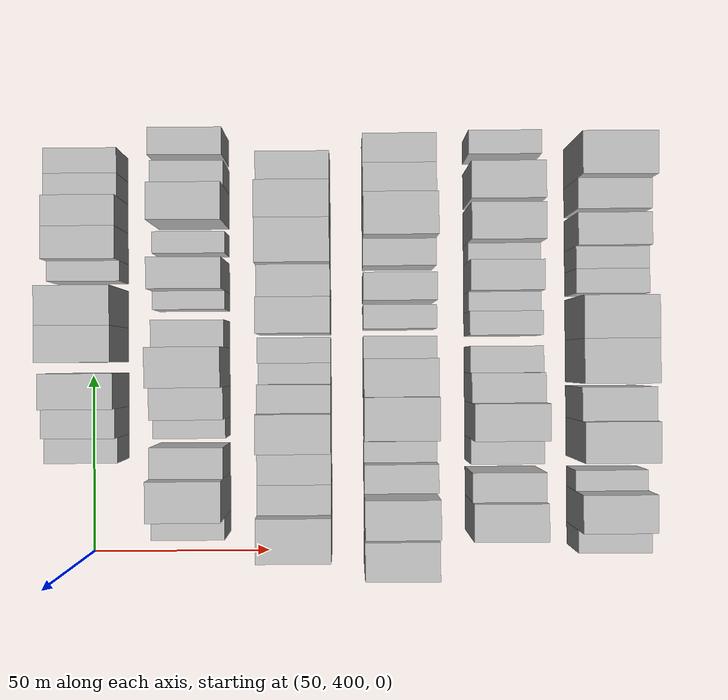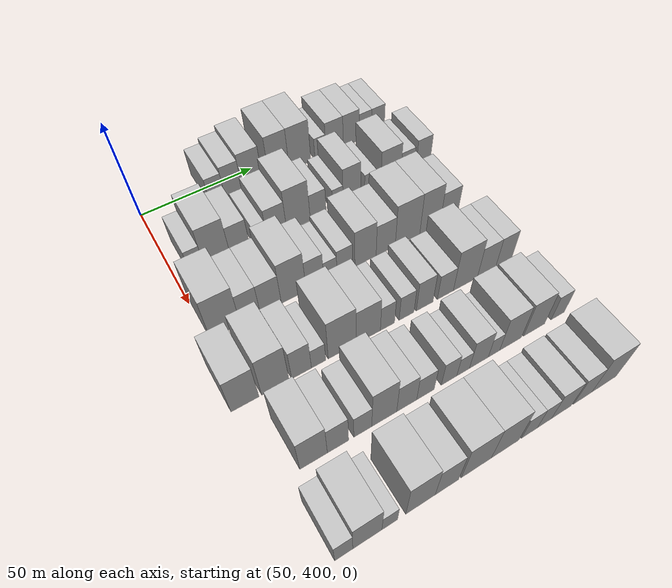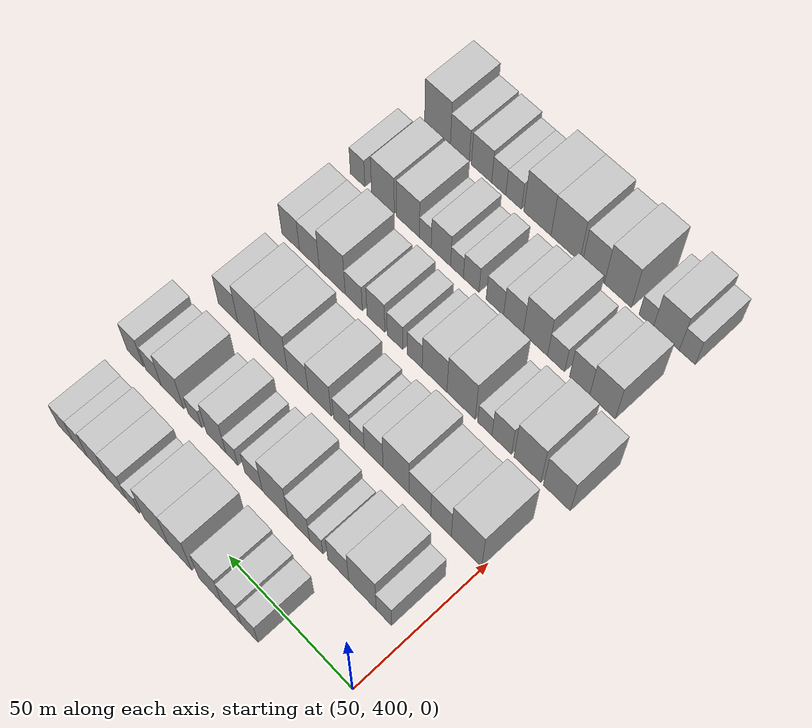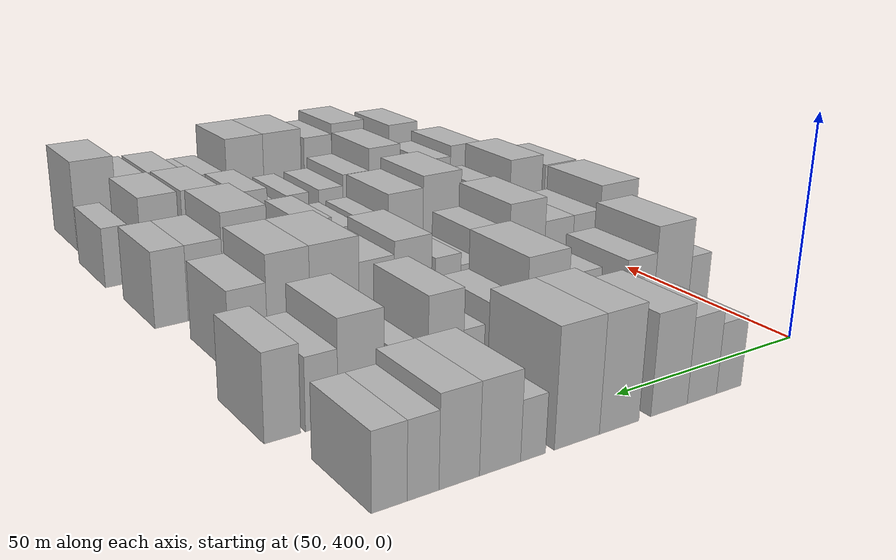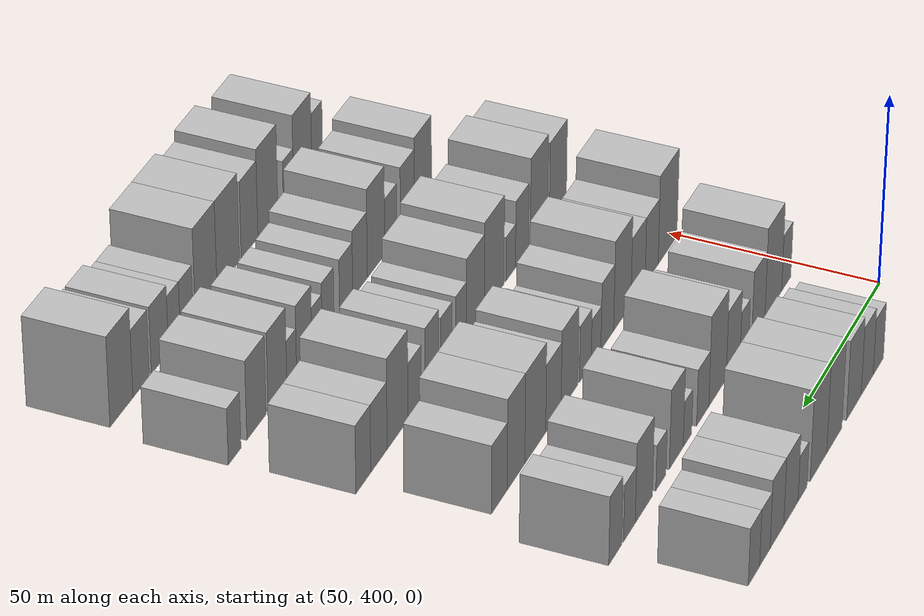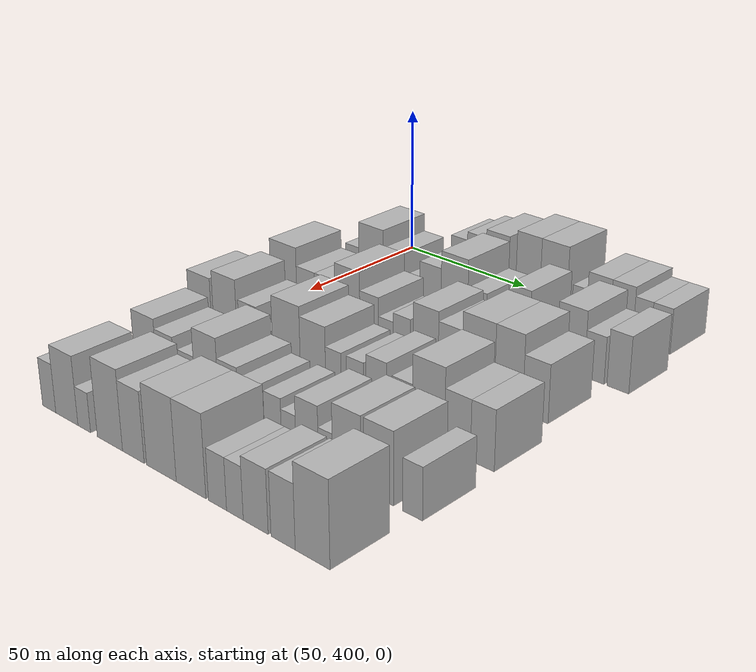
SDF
<sdf version="1.6">
 <world name="default">
  <model name="building_86">
   <static>1</static>
   <pose>50.0000 429.9602 0 0.000000 0.000000 0.000000</pose>
   <link name="link">
    <pose>0 0 7.50 0 0 0</pose>
    <collision name="collision"><geometry><box><size>20.0000 6.9183 15.0000</size></box></geometry></collision>
    <visual name="visual">
     <cast_shadows>0</cast_shadows>
     <geometry><box><size>20.0000 6.9183 15.0000</size></box></geometry>
     <material>
      <script>
       <uri>model://HANNAS_wall/materials/scripts</uri>
       <uri>model://HANNAS_wall/materials/textures</uri>
       <name>vrc/HANNAS_wall</name>
      </script>
     </material>
    </visual>
   </link>
  </model>
  <model name="building_87">
   <static>1</static>
   <pose>50.0000 437.3930 0 0.000000 0.000000 0.000000</pose>
   <link name="link">
    <pose>0 0 9.00 0 0 0</pose>
    <collision name="collision"><geometry><box><size>20.0000 7.9475 18.0000</size></box></geometry></collision>
    <visual name="visual">
     <cast_shadows>0</cast_shadows>
     <geometry><box><size>20.0000 7.9475 18.0000</size></box></geometry>
     <material>
      <script>
       <uri>model://HANNAS_wall/materials/scripts</uri>
       <uri>model://HANNAS_wall/materials/textures</uri>
       <name>vrc/HANNAS_wall</name>
      </script>
     </material>
    </visual>
   </link>
  </model>
  <model name="building_88">
   <static>1</static>
   <pose>50.0000 446.1494 0 0.000000 0.000000 0.000000</pose>
   <link name="link">
    <pose>0 0 10.50 0 0 0</pose>
    <collision name="collision"><geometry><box><size>20.0000 9.5653 21.0000</size></box></geometry></collision>
    <visual name="visual">
     <cast_shadows>0</cast_shadows>
     <geometry><box><size>20.0000 9.5653 21.0000</size></box></geometry>
     <material>
      <script>
       <uri>model://HANNAS_wall/materials/scripts</uri>
       <uri>model://HANNAS_wall/materials/textures</uri>
       <name>vrc/HANNAS_wall</name>
      </script>
     </material>
    </visual>
   </link>
  </model>
  <model name="building_89">
   <static>1</static>
   <pose>50.0000 458.8208 0 0.000000 0.000000 0.000000</pose>
   <link name="link">
    <pose>0 0 12.00 0 0 0</pose>
    <collision name="collision"><geometry><box><size>20.0000 9.7775 24.0000</size></box></geometry></collision>
    <visual name="visual">
     <cast_shadows>0</cast_shadows>
     <geometry><box><size>20.0000 9.7775 24.0000</size></box></geometry>
     <material>
      <script>
       <uri>model://HANNAS_wall/materials/scripts</uri>
       <uri>model://HANNAS_wall/materials/textures</uri>
       <name>vrc/HANNAS_wall</name>
      </script>
     </material>
    </visual>
   </link>
  </model>
  <model name="building_90">
   <static>1</static>
   <pose>50.0000 469.0062 0 0.000000 0.000000 0.000000</pose>
   <link name="link">
    <pose>0 0 12.00 0 0 0</pose>
    <collision name="collision"><geometry><box><size>20.0000 10.5933 24.0000</size></box></geometry></collision>
    <visual name="visual">
     <cast_shadows>0</cast_shadows>
     <geometry><box><size>20.0000 10.5933 24.0000</size></box></geometry>
     <material>
      <script>
       <uri>model://HANNAS_wall/materials/scripts</uri>
       <uri>model://HANNAS_wall/materials/textures</uri>
       <name>vrc/HANNAS_wall</name>
      </script>
     </material>
    </visual>
   </link>
  </model>
  <model name="building_91">
   <static>1</static>
   <pose>50.0000 479.0985 0 0.000000 0.000000 0.000000</pose>
   <link name="link">
    <pose>0 0 6.00 0 0 0</pose>
    <collision name="collision"><geometry><box><size>20.0000 5.5913 12.0000</size></box></geometry></collision>
    <visual name="visual">
     <cast_shadows>0</cast_shadows>
     <geometry><box><size>20.0000 5.5913 12.0000</size></box></geometry>
     <material>
      <script>
       <uri>model://HANNAS_wall/materials/scripts</uri>
       <uri>model://HANNAS_wall/materials/textures</uri>
       <name>vrc/HANNAS_wall</name>
      </script>
     </material>
    </visual>
   </link>
  </model>
  <model name="building_92">
   <static>1</static>
   <pose>50.0000 486.3324 0 0.000000 0.000000 0.000000</pose>
   <link name="link">
    <pose>0 0 9.00 0 0 0</pose>
    <collision name="collision"><geometry><box><size>20.0000 8.8766 18.0000</size></box></geometry></collision>
    <visual name="visual">
     <cast_shadows>0</cast_shadows>
     <geometry><box><size>20.0000 8.8766 18.0000</size></box></geometry>
     <material>
      <script>
       <uri>model://HANNAS_wall/materials/scripts</uri>
       <uri>model://HANNAS_wall/materials/textures</uri>
       <name>vrc/HANNAS_wall</name>
      </script>
     </material>
    </visual>
   </link>
  </model>
  <model name="building_93">
   <static>1</static>
   <pose>50.0000 494.9601 0 0.000000 0.000000 0.000000</pose>
   <link name="link">
    <pose>0 0 9.00 0 0 0</pose>
    <collision name="collision"><geometry><box><size>20.0000 8.3788 18.0000</size></box></geometry></collision>
    <visual name="visual">
     <cast_shadows>0</cast_shadows>
     <geometry><box><size>20.0000 8.3788 18.0000</size></box></geometry>
     <material>
      <script>
       <uri>model://HANNAS_wall/materials/scripts</uri>
       <uri>model://HANNAS_wall/materials/textures</uri>
       <name>vrc/HANNAS_wall</name>
      </script>
     </material>
    </visual>
   </link>
  </model>
  <model name="building_94">
   <static>1</static>
   <pose>50.0000 502.3244 0 0.000000 0.000000 0.000000</pose>
   <link name="link">
    <pose>0 0 7.50 0 0 0</pose>
    <collision name="collision"><geometry><box><size>20.0000 6.3497 15.0000</size></box></geometry></collision>
    <visual name="visual">
     <cast_shadows>0</cast_shadows>
     <geometry><box><size>20.0000 6.3497 15.0000</size></box></geometry>
     <material>
      <script>
       <uri>model://HANNAS_wall/materials/scripts</uri>
       <uri>model://HANNAS_wall/materials/textures</uri>
       <name>vrc/HANNAS_wall</name>
      </script>
     </material>
    </visual>
   </link>
  </model>
  <model name="building_95">
   <static>1</static>
   <pose>50.0000 508.9466 0 0.000000 0.000000 0.000000</pose>
   <link name="link">
    <pose>0 0 7.50 0 0 0</pose>
    <collision name="collision"><geometry><box><size>20.0000 6.8949 15.0000</size></box></geometry></collision>
    <visual name="visual">
     <cast_shadows>0</cast_shadows>
     <geometry><box><size>20.0000 6.8949 15.0000</size></box></geometry>
     <material>
      <script>
       <uri>model://HANNAS_wall/materials/scripts</uri>
       <uri>model://HANNAS_wall/materials/textures</uri>
       <name>vrc/HANNAS_wall</name>
      </script>
     </material>
    </visual>
   </link>
  </model>
  <model name="building_199">
   <static>1</static>
   <pose>79.0000 408.4705 0 0.000000 0.000000 0.000000</pose>
   <link name="link">
    <pose>0 0 7.50 0 0 0</pose>
    <collision name="collision"><geometry><box><size>20.0000 6.0380 15.0000</size></box></geometry></collision>
    <visual name="visual">
     <cast_shadows>0</cast_shadows>
     <geometry><box><size>20.0000 6.0380 15.0000</size></box></geometry>
     <material>
      <script>
       <uri>model://HANNAS_wall/materials/scripts</uri>
       <uri>model://HANNAS_wall/materials/textures</uri>
       <name>vrc/HANNAS_wall</name>
      </script>
     </material>
    </visual>
   </link>
  </model>
  <model name="building_200">
   <static>1</static>
   <pose>79.0000 416.9310 0 0.000000 0.000000 0.000000</pose>
   <link name="link">
    <pose>0 0 12.00 0 0 0</pose>
    <collision name="collision"><geometry><box><size>20.0000 10.8831 24.0000</size></box></geometry></collision>
    <visual name="visual">
     <cast_shadows>0</cast_shadows>
     <geometry><box><size>20.0000 10.8831 24.0000</size></box></geometry>
     <material>
      <script>
       <uri>model://HANNAS_wall/materials/scripts</uri>
       <uri>model://HANNAS_wall/materials/textures</uri>
       <name>vrc/HANNAS_wall</name>
      </script>
     </material>
    </visual>
   </link>
  </model>
  <model name="building_201">
   <static>1</static>
   <pose>79.0000 426.5983 0 0.000000 0.000000 0.000000</pose>
   <link name="link">
    <pose>0 0 9.00 0 0 0</pose>
    <collision name="collision"><geometry><box><size>20.0000 8.4514 18.0000</size></box></geometry></collision>
    <visual name="visual">
     <cast_shadows>0</cast_shadows>
     <geometry><box><size>20.0000 8.4514 18.0000</size></box></geometry>
     <material>
      <script>
       <uri>model://HANNAS_wall/materials/scripts</uri>
       <uri>model://HANNAS_wall/materials/textures</uri>
       <name>vrc/HANNAS_wall</name>
      </script>
     </material>
    </visual>
   </link>
  </model>
  <model name="building_202">
   <static>1</static>
   <pose>79.0000 435.5269 0 0.000000 0.000000 0.000000</pose>
   <link name="link">
    <pose>0 0 6.00 0 0 0</pose>
    <collision name="collision"><geometry><box><size>20.0000 5.4058 12.0000</size></box></geometry></collision>
    <visual name="visual">
     <cast_shadows>0</cast_shadows>
     <geometry><box><size>20.0000 5.4058 12.0000</size></box></geometry>
     <material>
      <script>
       <uri>model://HANNAS_wall/materials/scripts</uri>
       <uri>model://HANNAS_wall/materials/textures</uri>
       <name>vrc/HANNAS_wall</name>
      </script>
     </material>
    </visual>
   </link>
  </model>
  <model name="building_203">
   <static>1</static>
   <pose>79.0000 442.6333 0 0.000000 0.000000 0.000000</pose>
   <link name="link">
    <pose>0 0 9.00 0 0 0</pose>
    <collision name="collision"><geometry><box><size>20.0000 8.8070 18.0000</size></box></geometry></collision>
    <visual name="visual">
     <cast_shadows>0</cast_shadows>
     <geometry><box><size>20.0000 8.8070 18.0000</size></box></geometry>
     <material>
      <script>
       <uri>model://HANNAS_wall/materials/scripts</uri>
       <uri>model://HANNAS_wall/materials/textures</uri>
       <name>vrc/HANNAS_wall</name>
      </script>
     </material>
    </visual>
   </link>
  </model>
  <model name="building_204">
   <static>1</static>
   <pose>79.0000 452.4380 0 0.000000 0.000000 0.000000</pose>
   <link name="link">
    <pose>0 0 12.00 0 0 0</pose>
    <collision name="collision"><geometry><box><size>20.0000 10.8023 24.0000</size></box></geometry></collision>
    <visual name="visual">
     <cast_shadows>0</cast_shadows>
     <geometry><box><size>20.0000 10.8023 24.0000</size></box></geometry>
     <material>
      <script>
       <uri>model://HANNAS_wall/materials/scripts</uri>
       <uri>model://HANNAS_wall/materials/textures</uri>
       <name>vrc/HANNAS_wall</name>
      </script>
     </material>
    </visual>
   </link>
  </model>
  <model name="building_205">
   <static>1</static>
   <pose>79.0000 461.5827 0 0.000000 0.000000 0.000000</pose>
   <link name="link">
    <pose>0 0 7.50 0 0 0</pose>
    <collision name="collision"><geometry><box><size>20.0000 7.4871 15.0000</size></box></geometry></collision>
    <visual name="visual">
     <cast_shadows>0</cast_shadows>
     <geometry><box><size>20.0000 7.4871 15.0000</size></box></geometry>
     <material>
      <script>
       <uri>model://HANNAS_wall/materials/scripts</uri>
       <uri>model://HANNAS_wall/materials/textures</uri>
       <name>vrc/HANNAS_wall</name>
      </script>
     </material>
    </visual>
   </link>
  </model>
  <model name="building_206">
   <static>1</static>
   <pose>79.0000 470.8729 0 0.000000 0.000000 0.000000</pose>
   <link name="link">
    <pose>0 0 6.00 0 0 0</pose>
    <collision name="collision"><geometry><box><size>20.0000 5.0934 12.0000</size></box></geometry></collision>
    <visual name="visual">
     <cast_shadows>0</cast_shadows>
     <geometry><box><size>20.0000 5.0934 12.0000</size></box></geometry>
     <material>
      <script>
       <uri>model://HANNAS_wall/materials/scripts</uri>
       <uri>model://HANNAS_wall/materials/textures</uri>
       <name>vrc/HANNAS_wall</name>
      </script>
     </material>
    </visual>
   </link>
  </model>
  <model name="building_207">
   <static>1</static>
   <pose>79.0000 477.6265 0 0.000000 0.000000 0.000000</pose>
   <link name="link">
    <pose>0 0 10.50 0 0 0</pose>
    <collision name="collision"><geometry><box><size>20.0000 8.4139 21.0000</size></box></geometry></collision>
    <visual name="visual">
     <cast_shadows>0</cast_shadows>
     <geometry><box><size>20.0000 8.4139 21.0000</size></box></geometry>
     <material>
      <script>
       <uri>model://HANNAS_wall/materials/scripts</uri>
       <uri>model://HANNAS_wall/materials/textures</uri>
       <name>vrc/HANNAS_wall</name>
      </script>
     </material>
    </visual>
   </link>
  </model>
  <model name="building_208">
   <static>1</static>
   <pose>79.0000 486.8293 0 0.000000 0.000000 0.000000</pose>
   <link name="link">
    <pose>0 0 6.00 0 0 0</pose>
    <collision name="collision"><geometry><box><size>20.0000 5.9916 12.0000</size></box></geometry></collision>
    <visual name="visual">
     <cast_shadows>0</cast_shadows>
     <geometry><box><size>20.0000 5.9916 12.0000</size></box></geometry>
     <material>
      <script>
       <uri>model://HANNAS_wall/materials/scripts</uri>
       <uri>model://HANNAS_wall/materials/textures</uri>
       <name>vrc/HANNAS_wall</name>
      </script>
     </material>
    </visual>
   </link>
  </model>
  <model name="building_209">
   <static>1</static>
   <pose>79.0000 496.8470 0 0.000000 0.000000 0.000000</pose>
   <link name="link">
    <pose>0 0 10.50 0 0 0</pose>
    <collision name="collision"><geometry><box><size>20.0000 10.0439 21.0000</size></box></geometry></collision>
    <visual name="visual">
     <cast_shadows>0</cast_shadows>
     <geometry><box><size>20.0000 10.0439 21.0000</size></box></geometry>
     <material>
      <script>
       <uri>model://HANNAS_wall/materials/scripts</uri>
       <uri>model://HANNAS_wall/materials/textures</uri>
       <name>vrc/HANNAS_wall</name>
      </script>
     </material>
    </visual>
   </link>
  </model>
  <model name="building_210">
   <static>1</static>
   <pose>79.0000 505.3056 0 0.000000 0.000000 0.000000</pose>
   <link name="link">
    <pose>0 0 7.50 0 0 0</pose>
    <collision name="collision"><geometry><box><size>20.0000 6.8732 15.0000</size></box></geometry></collision>
    <visual name="visual">
     <cast_shadows>0</cast_shadows>
     <geometry><box><size>20.0000 6.8732 15.0000</size></box></geometry>
     <material>
      <script>
       <uri>model://HANNAS_wall/materials/scripts</uri>
       <uri>model://HANNAS_wall/materials/textures</uri>
       <name>vrc/HANNAS_wall</name>
      </script>
     </material>
    </visual>
   </link>
  </model>
  <model name="building_211">
   <static>1</static>
   <pose>79.0000 513.4497 0 0.000000 0.000000 0.000000</pose>
   <link name="link">
    <pose>0 0 9.00 0 0 0</pose>
    <collision name="collision"><geometry><box><size>20.0000 7.4150 18.0000</size></box></geometry></collision>
    <visual name="visual">
     <cast_shadows>0</cast_shadows>
     <geometry><box><size>20.0000 7.4150 18.0000</size></box></geometry>
     <material>
      <script>
       <uri>model://HANNAS_wall/materials/scripts</uri>
       <uri>model://HANNAS_wall/materials/textures</uri>
       <name>vrc/HANNAS_wall</name>
      </script>
     </material>
    </visual>
   </link>
  </model>
  <model name="building_310">
   <static>1</static>
   <pose>108.0000 406.5081 0 0.000000 0.000000 0.000000</pose>
   <link name="link">
    <pose>0 0 12.00 0 0 0</pose>
    <collision name="collision"><geometry><box><size>20.0000 11.9198 24.0000</size></box></geometry></collision>
    <visual name="visual">
     <cast_shadows>0</cast_shadows>
     <geometry><box><size>20.0000 11.9198 24.0000</size></box></geometry>
     <material>
      <script>
       <uri>model://HANNAS_wall/materials/scripts</uri>
       <uri>model://HANNAS_wall/materials/textures</uri>
       <name>vrc/HANNAS_wall</name>
      </script>
     </material>
    </visual>
   </link>
  </model>
  <model name="building_311">
   <static>1</static>
   <pose>108.0000 416.5369 0 0.000000 0.000000 0.000000</pose>
   <link name="link">
    <pose>0 0 9.00 0 0 0</pose>
    <collision name="collision"><geometry><box><size>20.0000 8.1377 18.0000</size></box></geometry></collision>
    <visual name="visual">
     <cast_shadows>0</cast_shadows>
     <geometry><box><size>20.0000 8.1377 18.0000</size></box></geometry>
     <material>
      <script>
       <uri>model://HANNAS_wall/materials/scripts</uri>
       <uri>model://HANNAS_wall/materials/textures</uri>
       <name>vrc/HANNAS_wall</name>
      </script>
     </material>
    </visual>
   </link>
  </model>
  <model name="building_312">
   <static>1</static>
   <pose>108.0000 424.9684 0 0.000000 0.000000 0.000000</pose>
   <link name="link">
    <pose>0 0 9.00 0 0 0</pose>
    <collision name="collision"><geometry><box><size>20.0000 8.7254 18.0000</size></box></geometry></collision>
    <visual name="visual">
     <cast_shadows>0</cast_shadows>
     <geometry><box><size>20.0000 8.7254 18.0000</size></box></geometry>
     <material>
      <script>
       <uri>model://HANNAS_wall/materials/scripts</uri>
       <uri>model://HANNAS_wall/materials/textures</uri>
       <name>vrc/HANNAS_wall</name>
      </script>
     </material>
    </visual>
   </link>
  </model>
  <model name="building_313">
   <static>1</static>
   <pose>108.0000 434.5782 0 0.000000 0.000000 0.000000</pose>
   <link name="link">
    <pose>0 0 12.00 0 0 0</pose>
    <collision name="collision"><geometry><box><size>20.0000 10.4943 24.0000</size></box></geometry></collision>
    <visual name="visual">
     <cast_shadows>0</cast_shadows>
     <geometry><box><size>20.0000 10.4943 24.0000</size></box></geometry>
     <material>
      <script>
       <uri>model://HANNAS_wall/materials/scripts</uri>
       <uri>model://HANNAS_wall/materials/textures</uri>
       <name>vrc/HANNAS_wall</name>
      </script>
     </material>
    </visual>
   </link>
  </model>
  <model name="building_314">
   <static>1</static>
   <pose>108.0000 443.6881 0 0.000000 0.000000 0.000000</pose>
   <link name="link">
    <pose>0 0 9.00 0 0 0</pose>
    <collision name="collision"><geometry><box><size>20.0000 7.7256 18.0000</size></box></geometry></collision>
    <visual name="visual">
     <cast_shadows>0</cast_shadows>
     <geometry><box><size>20.0000 7.7256 18.0000</size></box></geometry>
     <material>
      <script>
       <uri>model://HANNAS_wall/materials/scripts</uri>
       <uri>model://HANNAS_wall/materials/textures</uri>
       <name>vrc/HANNAS_wall</name>
      </script>
     </material>
    </visual>
   </link>
  </model>
  <model name="building_315">
   <static>1</static>
   <pose>108.0000 450.4534 0 0.000000 0.000000 0.000000</pose>
   <link name="link">
    <pose>0 0 6.00 0 0 0</pose>
    <collision name="collision"><geometry><box><size>20.0000 5.8049 12.0000</size></box></geometry></collision>
    <visual name="visual">
     <cast_shadows>0</cast_shadows>
     <geometry><box><size>20.0000 5.8049 12.0000</size></box></geometry>
     <material>
      <script>
       <uri>model://HANNAS_wall/materials/scripts</uri>
       <uri>model://HANNAS_wall/materials/textures</uri>
       <name>vrc/HANNAS_wall</name>
      </script>
     </material>
    </visual>
   </link>
  </model>
  <model name="building_316">
   <static>1</static>
   <pose>108.0000 456.8380 0 0.000000 0.000000 0.000000</pose>
   <link name="link">
    <pose>0 0 7.50 0 0 0</pose>
    <collision name="collision"><geometry><box><size>20.0000 6.9644 15.0000</size></box></geometry></collision>
    <visual name="visual">
     <cast_shadows>0</cast_shadows>
     <geometry><box><size>20.0000 6.9644 15.0000</size></box></geometry>
     <material>
      <script>
       <uri>model://HANNAS_wall/materials/scripts</uri>
       <uri>model://HANNAS_wall/materials/textures</uri>
       <name>vrc/HANNAS_wall</name>
      </script>
     </material>
    </visual>
   </link>
  </model>
  <model name="building_317">
   <static>1</static>
   <pose>108.0000 466.1929 0 0.000000 0.000000 0.000000</pose>
   <link name="link">
    <pose>0 0 10.50 0 0 0</pose>
    <collision name="collision"><geometry><box><size>20.0000 9.7454 21.0000</size></box></geometry></collision>
    <visual name="visual">
     <cast_shadows>0</cast_shadows>
     <geometry><box><size>20.0000 9.7454 21.0000</size></box></geometry>
     <material>
      <script>
       <uri>model://HANNAS_wall/materials/scripts</uri>
       <uri>model://HANNAS_wall/materials/textures</uri>
       <name>vrc/HANNAS_wall</name>
      </script>
     </material>
    </visual>
   </link>
  </model>
  <model name="building_318">
   <static>1</static>
   <pose>108.0000 475.5325 0 0.000000 0.000000 0.000000</pose>
   <link name="link">
    <pose>0 0 9.00 0 0 0</pose>
    <collision name="collision"><geometry><box><size>20.0000 8.9336 18.0000</size></box></geometry></collision>
    <visual name="visual">
     <cast_shadows>0</cast_shadows>
     <geometry><box><size>20.0000 8.9336 18.0000</size></box></geometry>
     <material>
      <script>
       <uri>model://HANNAS_wall/materials/scripts</uri>
       <uri>model://HANNAS_wall/materials/textures</uri>
       <name>vrc/HANNAS_wall</name>
      </script>
     </material>
    </visual>
   </link>
  </model>
  <model name="building_319">
   <static>1</static>
   <pose>108.0000 485.9174 0 0.000000 0.000000 0.000000</pose>
   <link name="link">
    <pose>0 0 12.00 0 0 0</pose>
    <collision name="collision"><geometry><box><size>20.0000 11.8364 24.0000</size></box></geometry></collision>
    <visual name="visual">
     <cast_shadows>0</cast_shadows>
     <geometry><box><size>20.0000 11.8364 24.0000</size></box></geometry>
     <material>
      <script>
       <uri>model://HANNAS_wall/materials/scripts</uri>
       <uri>model://HANNAS_wall/materials/textures</uri>
       <name>vrc/HANNAS_wall</name>
      </script>
     </material>
    </visual>
   </link>
  </model>
  <model name="building_320">
   <static>1</static>
   <pose>108.0000 496.8282 0 0.000000 0.000000 0.000000</pose>
   <link name="link">
    <pose>0 0 12.00 0 0 0</pose>
    <collision name="collision"><geometry><box><size>20.0000 9.9853 24.0000</size></box></geometry></collision>
    <visual name="visual">
     <cast_shadows>0</cast_shadows>
     <geometry><box><size>20.0000 9.9853 24.0000</size></box></geometry>
     <material>
      <script>
       <uri>model://HANNAS_wall/materials/scripts</uri>
       <uri>model://HANNAS_wall/materials/textures</uri>
       <name>vrc/HANNAS_wall</name>
      </script>
     </material>
    </visual>
   </link>
  </model>
  <model name="building_321">
   <static>1</static>
   <pose>108.0000 506.1803 0 0.000000 0.000000 0.000000</pose>
   <link name="link">
    <pose>0 0 9.00 0 0 0</pose>
    <collision name="collision"><geometry><box><size>20.0000 8.7188 18.0000</size></box></geometry></collision>
    <visual name="visual">
     <cast_shadows>0</cast_shadows>
     <geometry><box><size>20.0000 8.7188 18.0000</size></box></geometry>
     <material>
      <script>
       <uri>model://HANNAS_wall/materials/scripts</uri>
       <uri>model://HANNAS_wall/materials/textures</uri>
       <name>vrc/HANNAS_wall</name>
      </script>
     </material>
    </visual>
   </link>
  </model>
  <model name="building_424">
   <static>1</static>
   <pose>137.0000 400.2787 0 0.000000 0.000000 0.000000</pose>
   <link name="link">
    <pose>0 0 10.50 0 0 0</pose>
    <collision name="collision"><geometry><box><size>20.0000 10.4833 21.0000</size></box></geometry></collision>
    <visual name="visual">
     <cast_shadows>0</cast_shadows>
     <geometry><box><size>20.0000 10.4833 21.0000</size></box></geometry>
     <material>
      <script>
       <uri>model://HANNAS_wall/materials/scripts</uri>
       <uri>model://HANNAS_wall/materials/textures</uri>
       <name>vrc/HANNAS_wall</name>
      </script>
     </material>
    </visual>
   </link>
  </model>
  <model name="building_425">
   <static>1</static>
   <pose>137.0000 411.7975 0 0.000000 0.000000 0.000000</pose>
   <link name="link">
    <pose>0 0 12.00 0 0 0</pose>
    <collision name="collision"><geometry><box><size>20.0000 10.5542 24.0000</size></box></geometry></collision>
    <visual name="visual">
     <cast_shadows>0</cast_shadows>
     <geometry><box><size>20.0000 10.5542 24.0000</size></box></geometry>
     <material>
      <script>
       <uri>model://HANNAS_wall/materials/scripts</uri>
       <uri>model://HANNAS_wall/materials/textures</uri>
       <name>vrc/HANNAS_wall</name>
      </script>
     </material>
    </visual>
   </link>
  </model>
  <model name="building_426">
   <static>1</static>
   <pose>137.0000 421.9753 0 0.000000 0.000000 0.000000</pose>
   <link name="link">
    <pose>0 0 9.00 0 0 0</pose>
    <collision name="collision"><geometry><box><size>20.0000 7.8013 18.0000</size></box></geometry></collision>
    <visual name="visual">
     <cast_shadows>0</cast_shadows>
     <geometry><box><size>20.0000 7.8013 18.0000</size></box></geometry>
     <material>
      <script>
       <uri>model://HANNAS_wall/materials/scripts</uri>
       <uri>model://HANNAS_wall/materials/textures</uri>
       <name>vrc/HANNAS_wall</name>
      </script>
     </material>
    </visual>
   </link>
  </model>
  <model name="building_427">
   <static>1</static>
   <pose>137.0000 428.7517 0 0.000000 0.000000 0.000000</pose>
   <link name="link">
    <pose>0 0 6.00 0 0 0</pose>
    <collision name="collision"><geometry><box><size>20.0000 5.7515 12.0000</size></box></geometry></collision>
    <visual name="visual">
     <cast_shadows>0</cast_shadows>
     <geometry><box><size>20.0000 5.7515 12.0000</size></box></geometry>
     <material>
      <script>
       <uri>model://HANNAS_wall/materials/scripts</uri>
       <uri>model://HANNAS_wall/materials/textures</uri>
       <name>vrc/HANNAS_wall</name>
      </script>
     </material>
    </visual>
   </link>
  </model>
  <model name="building_428">
   <static>1</static>
   <pose>137.0000 438.3985 0 0.000000 0.000000 0.000000</pose>
   <link name="link">
    <pose>0 0 12.00 0 0 0</pose>
    <collision name="collision"><geometry><box><size>20.0000 11.5421 24.0000</size></box></geometry></collision>
    <visual name="visual">
     <cast_shadows>0</cast_shadows>
     <geometry><box><size>20.0000 11.5421 24.0000</size></box></geometry>
     <material>
      <script>
       <uri>model://HANNAS_wall/materials/scripts</uri>
       <uri>model://HANNAS_wall/materials/textures</uri>
       <name>vrc/HANNAS_wall</name>
      </script>
     </material>
    </visual>
   </link>
  </model>
  <model name="building_429">
   <static>1</static>
   <pose>137.0000 449.2829 0 0.000000 0.000000 0.000000</pose>
   <link name="link">
    <pose>0 0 10.50 0 0 0</pose>
    <collision name="collision"><geometry><box><size>20.0000 10.2268 21.0000</size></box></geometry></collision>
    <visual name="visual">
     <cast_shadows>0</cast_shadows>
     <geometry><box><size>20.0000 10.2268 21.0000</size></box></geometry>
     <material>
      <script>
       <uri>model://HANNAS_wall/materials/scripts</uri>
       <uri>model://HANNAS_wall/materials/textures</uri>
       <name>vrc/HANNAS_wall</name>
      </script>
     </material>
    </visual>
   </link>
  </model>
  <model name="building_430">
   <static>1</static>
   <pose>137.0000 457.4724 0 0.000000 0.000000 0.000000</pose>
   <link name="link">
    <pose>0 0 7.50 0 0 0</pose>
    <collision name="collision"><geometry><box><size>20.0000 6.1521 15.0000</size></box></geometry></collision>
    <visual name="visual">
     <cast_shadows>0</cast_shadows>
     <geometry><box><size>20.0000 6.1521 15.0000</size></box></geometry>
     <material>
      <script>
       <uri>model://HANNAS_wall/materials/scripts</uri>
       <uri>model://HANNAS_wall/materials/textures</uri>
       <name>vrc/HANNAS_wall</name>
      </script>
     </material>
    </visual>
   </link>
  </model>
  <model name="building_431">
   <static>1</static>
   <pose>137.0000 465.8354 0 0.000000 0.000000 0.000000</pose>
   <link name="link">
    <pose>0 0 7.50 0 0 0</pose>
    <collision name="collision"><geometry><box><size>20.0000 6.5738 15.0000</size></box></geometry></collision>
    <visual name="visual">
     <cast_shadows>0</cast_shadows>
     <geometry><box><size>20.0000 6.5738 15.0000</size></box></geometry>
     <material>
      <script>
       <uri>model://HANNAS_wall/materials/scripts</uri>
       <uri>model://HANNAS_wall/materials/textures</uri>
       <name>vrc/HANNAS_wall</name>
      </script>
     </material>
    </visual>
   </link>
  </model>
  <model name="building_432">
   <static>1</static>
   <pose>137.0000 473.9196 0 0.000000 0.000000 0.000000</pose>
   <link name="link">
    <pose>0 0 9.00 0 0 0</pose>
    <collision name="collision"><geometry><box><size>20.0000 7.5946 18.0000</size></box></geometry></collision>
    <visual name="visual">
     <cast_shadows>0</cast_shadows>
     <geometry><box><size>20.0000 7.5946 18.0000</size></box></geometry>
     <material>
      <script>
       <uri>model://HANNAS_wall/materials/scripts</uri>
       <uri>model://HANNAS_wall/materials/textures</uri>
       <name>vrc/HANNAS_wall</name>
      </script>
     </material>
    </visual>
   </link>
  </model>
  <model name="building_433">
   <static>1</static>
   <pose>137.0000 483.4204 0 0.000000 0.000000 0.000000</pose>
   <link name="link">
    <pose>0 0 7.50 0 0 0</pose>
    <collision name="collision"><geometry><box><size>20.0000 7.4070 15.0000</size></box></geometry></collision>
    <visual name="visual">
     <cast_shadows>0</cast_shadows>
     <geometry><box><size>20.0000 7.4070 15.0000</size></box></geometry>
     <material>
      <script>
       <uri>model://HANNAS_wall/materials/scripts</uri>
       <uri>model://HANNAS_wall/materials/textures</uri>
       <name>vrc/HANNAS_wall</name>
      </script>
     </material>
    </visual>
   </link>
  </model>
  <model name="building_434">
   <static>1</static>
   <pose>137.0000 492.7929 0 0.000000 0.000000 0.000000</pose>
   <link name="link">
    <pose>0 0 12.00 0 0 0</pose>
    <collision name="collision"><geometry><box><size>20.0000 11.3379 24.0000</size></box></geometry></collision>
    <visual name="visual">
     <cast_shadows>0</cast_shadows>
     <geometry><box><size>20.0000 11.3379 24.0000</size></box></geometry>
     <material>
      <script>
       <uri>model://HANNAS_wall/materials/scripts</uri>
       <uri>model://HANNAS_wall/materials/textures</uri>
       <name>vrc/HANNAS_wall</name>
      </script>
     </material>
    </visual>
   </link>
  </model>
  <model name="building_435">
   <static>1</static>
   <pose>137.0000 502.8744 0 0.000000 0.000000 0.000000</pose>
   <link name="link">
    <pose>0 0 9.00 0 0 0</pose>
    <collision name="collision"><geometry><box><size>20.0000 8.8252 18.0000</size></box></geometry></collision>
    <visual name="visual">
     <cast_shadows>0</cast_shadows>
     <geometry><box><size>20.0000 8.8252 18.0000</size></box></geometry>
     <material>
      <script>
       <uri>model://HANNAS_wall/materials/scripts</uri>
       <uri>model://HANNAS_wall/materials/textures</uri>
       <name>vrc/HANNAS_wall</name>
      </script>
     </material>
    </visual>
   </link>
  </model>
  <model name="building_436">
   <static>1</static>
   <pose>137.0000 511.2444 0 0.000000 0.000000 0.000000</pose>
   <link name="link">
    <pose>0 0 9.00 0 0 0</pose>
    <collision name="collision"><geometry><box><size>20.0000 7.9147 18.0000</size></box></geometry></collision>
    <visual name="visual">
     <cast_shadows>0</cast_shadows>
     <geometry><box><size>20.0000 7.9147 18.0000</size></box></geometry>
     <material>
      <script>
       <uri>model://HANNAS_wall/materials/scripts</uri>
       <uri>model://HANNAS_wall/materials/textures</uri>
       <name>vrc/HANNAS_wall</name>
      </script>
     </material>
    </visual>
   </link>
  </model>
  <model name="building_539">
   <static>1</static>
   <pose>166.0000 410.4513 0 0.000000 0.000000 0.000000</pose>
   <link name="link">
    <pose>0 0 10.50 0 0 0</pose>
    <collision name="collision"><geometry><box><size>20.0000 10.1016 21.0000</size></box></geometry></collision>
    <visual name="visual">
     <cast_shadows>0</cast_shadows>
     <geometry><box><size>20.0000 10.1016 21.0000</size></box></geometry>
     <material>
      <script>
       <uri>model://HANNAS_wall/materials/scripts</uri>
       <uri>model://HANNAS_wall/materials/textures</uri>
       <name>vrc/HANNAS_wall</name>
      </script>
     </material>
    </visual>
   </link>
  </model>
  <model name="building_540">
   <static>1</static>
   <pose>166.0000 419.4967 0 0.000000 0.000000 0.000000</pose>
   <link name="link">
    <pose>0 0 9.00 0 0 0</pose>
    <collision name="collision"><geometry><box><size>20.0000 7.9890 18.0000</size></box></geometry></collision>
    <visual name="visual">
     <cast_shadows>0</cast_shadows>
     <geometry><box><size>20.0000 7.9890 18.0000</size></box></geometry>
     <material>
      <script>
       <uri>model://HANNAS_wall/materials/scripts</uri>
       <uri>model://HANNAS_wall/materials/textures</uri>
       <name>vrc/HANNAS_wall</name>
      </script>
     </material>
    </visual>
   </link>
  </model>
  <model name="building_541">
   <static>1</static>
   <pose>166.0000 428.9329 0 0.000000 0.000000 0.000000</pose>
   <link name="link">
    <pose>0 0 7.50 0 0 0</pose>
    <collision name="collision"><geometry><box><size>20.0000 6.8835 15.0000</size></box></geometry></collision>
    <visual name="visual">
     <cast_shadows>0</cast_shadows>
     <geometry><box><size>20.0000 6.8835 15.0000</size></box></geometry>
     <material>
      <script>
       <uri>model://HANNAS_wall/materials/scripts</uri>
       <uri>model://HANNAS_wall/materials/textures</uri>
       <name>vrc/HANNAS_wall</name>
      </script>
     </material>
    </visual>
   </link>
  </model>
  <model name="building_542">
   <static>1</static>
   <pose>166.0000 437.3172 0 0.000000 0.000000 0.000000</pose>
   <link name="link">
    <pose>0 0 12.00 0 0 0</pose>
    <collision name="collision"><geometry><box><size>20.0000 9.8851 24.0000</size></box></geometry></collision>
    <visual name="visual">
     <cast_shadows>0</cast_shadows>
     <geometry><box><size>20.0000 9.8851 24.0000</size></box></geometry>
     <material>
      <script>
       <uri>model://HANNAS_wall/materials/scripts</uri>
       <uri>model://HANNAS_wall/materials/textures</uri>
       <name>vrc/HANNAS_wall</name>
      </script>
     </material>
    </visual>
   </link>
  </model>
  <model name="building_543">
   <static>1</static>
   <pose>166.0000 446.3097 0 0.000000 0.000000 0.000000</pose>
   <link name="link">
    <pose>0 0 9.00 0 0 0</pose>
    <collision name="collision"><geometry><box><size>20.0000 8.0998 18.0000</size></box></geometry></collision>
    <visual name="visual">
     <cast_shadows>0</cast_shadows>
     <geometry><box><size>20.0000 8.0998 18.0000</size></box></geometry>
     <material>
      <script>
       <uri>model://HANNAS_wall/materials/scripts</uri>
       <uri>model://HANNAS_wall/materials/textures</uri>
       <name>vrc/HANNAS_wall</name>
      </script>
     </material>
    </visual>
   </link>
  </model>
  <model name="building_544">
   <static>1</static>
   <pose>166.0000 453.9873 0 0.000000 0.000000 0.000000</pose>
   <link name="link">
    <pose>0 0 7.50 0 0 0</pose>
    <collision name="collision"><geometry><box><size>20.0000 7.2553 15.0000</size></box></geometry></collision>
    <visual name="visual">
     <cast_shadows>0</cast_shadows>
     <geometry><box><size>20.0000 7.2553 15.0000</size></box></geometry>
     <material>
      <script>
       <uri>model://HANNAS_wall/materials/scripts</uri>
       <uri>model://HANNAS_wall/materials/textures</uri>
       <name>vrc/HANNAS_wall</name>
      </script>
     </material>
    </visual>
   </link>
  </model>
  <model name="building_545">
   <static>1</static>
   <pose>166.0000 463.9000 0 0.000000 0.000000 0.000000</pose>
   <link name="link">
    <pose>0 0 7.50 0 0 0</pose>
    <collision name="collision"><geometry><box><size>20.0000 6.5701 15.0000</size></box></geometry></collision>
    <visual name="visual">
     <cast_shadows>0</cast_shadows>
     <geometry><box><size>20.0000 6.5701 15.0000</size></box></geometry>
     <material>
      <script>
       <uri>model://HANNAS_wall/materials/scripts</uri>
       <uri>model://HANNAS_wall/materials/textures</uri>
       <name>vrc/HANNAS_wall</name>
      </script>
     </material>
    </visual>
   </link>
  </model>
  <model name="building_546">
   <static>1</static>
   <pose>166.0000 469.9104 0 0.000000 0.000000 0.000000</pose>
   <link name="link">
    <pose>0 0 6.00 0 0 0</pose>
    <collision name="collision"><geometry><box><size>20.0000 5.4506 12.0000</size></box></geometry></collision>
    <visual name="visual">
     <cast_shadows>0</cast_shadows>
     <geometry><box><size>20.0000 5.4506 12.0000</size></box></geometry>
     <material>
      <script>
       <uri>model://HANNAS_wall/materials/scripts</uri>
       <uri>model://HANNAS_wall/materials/textures</uri>
       <name>vrc/HANNAS_wall</name>
      </script>
     </material>
    </visual>
   </link>
  </model>
  <model name="building_547">
   <static>1</static>
   <pose>166.0000 476.7778 0 0.000000 0.000000 0.000000</pose>
   <link name="link">
    <pose>0 0 9.00 0 0 0</pose>
    <collision name="collision"><geometry><box><size>20.0000 8.2842 18.0000</size></box></geometry></collision>
    <visual name="visual">
     <cast_shadows>0</cast_shadows>
     <geometry><box><size>20.0000 8.2842 18.0000</size></box></geometry>
     <material>
      <script>
       <uri>model://HANNAS_wall/materials/scripts</uri>
       <uri>model://HANNAS_wall/materials/textures</uri>
       <name>vrc/HANNAS_wall</name>
      </script>
     </material>
    </visual>
   </link>
  </model>
  <model name="building_548">
   <static>1</static>
   <pose>166.0000 483.4782 0 0.000000 0.000000 0.000000</pose>
   <link name="link">
    <pose>0 0 6.00 0 0 0</pose>
    <collision name="collision"><geometry><box><size>20.0000 5.1166 12.0000</size></box></geometry></collision>
    <visual name="visual">
     <cast_shadows>0</cast_shadows>
     <geometry><box><size>20.0000 5.1166 12.0000</size></box></geometry>
     <material>
      <script>
       <uri>model://HANNAS_wall/materials/scripts</uri>
       <uri>model://HANNAS_wall/materials/textures</uri>
       <name>vrc/HANNAS_wall</name>
      </script>
     </material>
    </visual>
   </link>
  </model>
  <model name="building_549">
   <static>1</static>
   <pose>166.0000 491.0014 0 0.000000 0.000000 0.000000</pose>
   <link name="link">
    <pose>0 0 10.50 0 0 0</pose>
    <collision name="collision"><geometry><box><size>20.0000 9.9299 21.0000</size></box></geometry></collision>
    <visual name="visual">
     <cast_shadows>0</cast_shadows>
     <geometry><box><size>20.0000 9.9299 21.0000</size></box></geometry>
     <material>
      <script>
       <uri>model://HANNAS_wall/materials/scripts</uri>
       <uri>model://HANNAS_wall/materials/textures</uri>
       <name>vrc/HANNAS_wall</name>
      </script>
     </material>
    </visual>
   </link>
  </model>
  <model name="building_550">
   <static>1</static>
   <pose>166.0000 501.9728 0 0.000000 0.000000 0.000000</pose>
   <link name="link">
    <pose>0 0 10.50 0 0 0</pose>
    <collision name="collision"><geometry><box><size>20.0000 10.0129 21.0000</size></box></geometry></collision>
    <visual name="visual">
     <cast_shadows>0</cast_shadows>
     <geometry><box><size>20.0000 10.0129 21.0000</size></box></geometry>
     <material>
      <script>
       <uri>model://HANNAS_wall/materials/scripts</uri>
       <uri>model://HANNAS_wall/materials/textures</uri>
       <name>vrc/HANNAS_wall</name>
      </script>
     </material>
    </visual>
   </link>
  </model>
  <model name="building_551">
   <static>1</static>
   <pose>166.0000 513.2264 0 0.000000 0.000000 0.000000</pose>
   <link name="link">
    <pose>0 0 7.50 0 0 0</pose>
    <collision name="collision"><geometry><box><size>20.0000 6.4942 15.0000</size></box></geometry></collision>
    <visual name="visual">
     <cast_shadows>0</cast_shadows>
     <geometry><box><size>20.0000 6.4942 15.0000</size></box></geometry>
     <material>
      <script>
       <uri>model://HANNAS_wall/materials/scripts</uri>
       <uri>model://HANNAS_wall/materials/textures</uri>
       <name>vrc/HANNAS_wall</name>
      </script>
     </material>
    </visual>
   </link>
  </model>
  <model name="building_646">
   <static>1</static>
   <pose>195.0000 404.3245 0 0.000000 0.000000 0.000000</pose>
   <link name="link">
    <pose>0 0 7.50 0 0 0</pose>
    <collision name="collision"><geometry><box><size>20.0000 6.2450 15.0000</size></box></geometry></collision>
    <visual name="visual">
     <cast_shadows>0</cast_shadows>
     <geometry><box><size>20.0000 6.2450 15.0000</size></box></geometry>
     <material>
      <script>
       <uri>model://HANNAS_wall/materials/scripts</uri>
       <uri>model://HANNAS_wall/materials/textures</uri>
       <name>vrc/HANNAS_wall</name>
      </script>
     </material>
    </visual>
   </link>
  </model>
  <model name="building_647">
   <static>1</static>
   <pose>195.0000 412.5653 0 0.000000 0.000000 0.000000</pose>
   <link name="link">
    <pose>0 0 10.50 0 0 0</pose>
    <collision name="collision"><geometry><box><size>20.0000 10.2368 21.0000</size></box></geometry></collision>
    <visual name="visual">
     <cast_shadows>0</cast_shadows>
     <geometry><box><size>20.0000 10.2368 21.0000</size></box></geometry>
     <material>
      <script>
       <uri>model://HANNAS_wall/materials/scripts</uri>
       <uri>model://HANNAS_wall/materials/textures</uri>
       <name>vrc/HANNAS_wall</name>
      </script>
     </material>
    </visual>
   </link>
  </model>
  <model name="building_648">
   <static>1</static>
   <pose>195.0000 420.5276 0 0.000000 0.000000 0.000000</pose>
   <link name="link">
    <pose>0 0 6.00 0 0 0</pose>
    <collision name="collision"><geometry><box><size>20.0000 5.6877 12.0000</size></box></geometry></collision>
    <visual name="visual">
     <cast_shadows>0</cast_shadows>
     <geometry><box><size>20.0000 5.6877 12.0000</size></box></geometry>
     <material>
      <script>
       <uri>model://HANNAS_wall/materials/scripts</uri>
       <uri>model://HANNAS_wall/materials/textures</uri>
       <name>vrc/HANNAS_wall</name>
      </script>
     </material>
    </visual>
   </link>
  </model>
  <model name="building_649">
   <static>1</static>
   <pose>195.0000 431.8544 0 0.000000 0.000000 0.000000</pose>
   <link name="link">
    <pose>0 0 12.00 0 0 0</pose>
    <collision name="collision"><geometry><box><size>20.0000 10.9658 24.0000</size></box></geometry></collision>
    <visual name="visual">
     <cast_shadows>0</cast_shadows>
     <geometry><box><size>20.0000 10.9658 24.0000</size></box></geometry>
     <material>
      <script>
       <uri>model://HANNAS_wall/materials/scripts</uri>
       <uri>model://HANNAS_wall/materials/textures</uri>
       <name>vrc/HANNAS_wall</name>
      </script>
     </material>
    </visual>
   </link>
  </model>
  <model name="building_650">
   <static>1</static>
   <pose>195.0000 441.8729 0 0.000000 0.000000 0.000000</pose>
   <link name="link">
    <pose>0 0 10.50 0 0 0</pose>
    <collision name="collision"><geometry><box><size>20.0000 9.0713 21.0000</size></box></geometry></collision>
    <visual name="visual">
     <cast_shadows>0</cast_shadows>
     <geometry><box><size>20.0000 9.0713 21.0000</size></box></geometry>
     <material>
      <script>
       <uri>model://HANNAS_wall/materials/scripts</uri>
       <uri>model://HANNAS_wall/materials/textures</uri>
       <name>vrc/HANNAS_wall</name>
      </script>
     </material>
    </visual>
   </link>
  </model>
  <model name="building_651">
   <static>1</static>
   <pose>195.0000 453.3886 0 0.000000 0.000000 0.000000</pose>
   <link name="link">
    <pose>0 0 12.00 0 0 0</pose>
    <collision name="collision"><geometry><box><size>20.0000 11.9601 24.0000</size></box></geometry></collision>
    <visual name="visual">
     <cast_shadows>0</cast_shadows>
     <geometry><box><size>20.0000 11.9601 24.0000</size></box></geometry>
     <material>
      <script>
       <uri>model://HANNAS_wall/materials/scripts</uri>
       <uri>model://HANNAS_wall/materials/textures</uri>
       <name>vrc/HANNAS_wall</name>
      </script>
     </material>
    </visual>
   </link>
  </model>
  <model name="building_652">
   <static>1</static>
   <pose>195.0000 465.0868 0 0.000000 0.000000 0.000000</pose>
   <link name="link">
    <pose>0 0 12.00 0 0 0</pose>
    <collision name="collision"><geometry><box><size>20.0000 11.4364 24.0000</size></box></geometry></collision>
    <visual name="visual">
     <cast_shadows>0</cast_shadows>
     <geometry><box><size>20.0000 11.4364 24.0000</size></box></geometry>
     <material>
      <script>
       <uri>model://HANNAS_wall/materials/scripts</uri>
       <uri>model://HANNAS_wall/materials/textures</uri>
       <name>vrc/HANNAS_wall</name>
      </script>
     </material>
    </visual>
   </link>
  </model>
  <model name="building_653">
   <static>1</static>
   <pose>195.0000 475.1700 0 0.000000 0.000000 0.000000</pose>
   <link name="link">
    <pose>0 0 7.50 0 0 0</pose>
    <collision name="collision"><geometry><box><size>20.0000 6.7300 15.0000</size></box></geometry></collision>
    <visual name="visual">
     <cast_shadows>0</cast_shadows>
     <geometry><box><size>20.0000 6.7300 15.0000</size></box></geometry>
     <material>
      <script>
       <uri>model://HANNAS_wall/materials/scripts</uri>
       <uri>model://HANNAS_wall/materials/textures</uri>
       <name>vrc/HANNAS_wall</name>
      </script>
     </material>
    </visual>
   </link>
  </model>
  <model name="building_654">
   <static>1</static>
   <pose>195.0000 481.5746 0 0.000000 0.000000 0.000000</pose>
   <link name="link">
    <pose>0 0 7.50 0 0 0</pose>
    <collision name="collision"><geometry><box><size>20.0000 6.0792 15.0000</size></box></geometry></collision>
    <visual name="visual">
     <cast_shadows>0</cast_shadows>
     <geometry><box><size>20.0000 6.0792 15.0000</size></box></geometry>
     <material>
      <script>
       <uri>model://HANNAS_wall/materials/scripts</uri>
       <uri>model://HANNAS_wall/materials/textures</uri>
       <name>vrc/HANNAS_wall</name>
      </script>
     </material>
    </visual>
   </link>
  </model>
  <model name="building_655">
   <static>1</static>
   <pose>195.0000 489.0177 0 0.000000 0.000000 0.000000</pose>
   <link name="link">
    <pose>0 0 9.00 0 0 0</pose>
    <collision name="collision"><geometry><box><size>20.0000 8.8071 18.0000</size></box></geometry></collision>
    <visual name="visual">
     <cast_shadows>0</cast_shadows>
     <geometry><box><size>20.0000 8.8071 18.0000</size></box></geometry>
     <material>
      <script>
       <uri>model://HANNAS_wall/materials/scripts</uri>
       <uri>model://HANNAS_wall/materials/textures</uri>
       <name>vrc/HANNAS_wall</name>
      </script>
     </material>
    </visual>
   </link>
  </model>
  <model name="building_656">
   <static>1</static>
   <pose>195.0000 498.5415 0 0.000000 0.000000 0.000000</pose>
   <link name="link">
    <pose>0 0 9.00 0 0 0</pose>
    <collision name="collision"><geometry><box><size>20.0000 8.2404 18.0000</size></box></geometry></collision>
    <visual name="visual">
     <cast_shadows>0</cast_shadows>
     <geometry><box><size>20.0000 8.2404 18.0000</size></box></geometry>
     <material>
      <script>
       <uri>model://HANNAS_wall/materials/scripts</uri>
       <uri>model://HANNAS_wall/materials/textures</uri>
       <name>vrc/HANNAS_wall</name>
      </script>
     </material>
    </visual>
   </link>
  </model>
  <model name="building_657">
   <static>1</static>
   <pose>195.0000 508.3789 0 0.000000 0.000000 0.000000</pose>
   <link name="link">
    <pose>0 0 12.00 0 0 0</pose>
    <collision name="collision"><geometry><box><size>20.0000 11.4345 24.0000</size></box></geometry></collision>
    <visual name="visual">
     <cast_shadows>0</cast_shadows>
     <geometry><box><size>20.0000 11.4345 24.0000</size></box></geometry>
     <material>
      <script>
       <uri>model://HANNAS_wall/materials/scripts</uri>
       <uri>model://HANNAS_wall/materials/textures</uri>
       <name>vrc/HANNAS_wall</name>
      </script>
     </material>
    </visual>
   </link>
  </model>
 </world>
</sdf>
